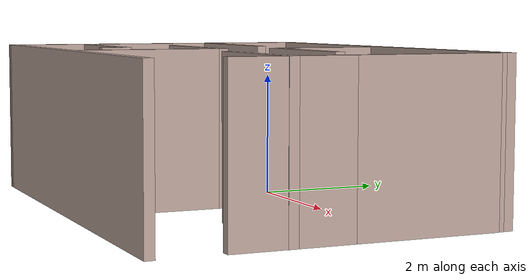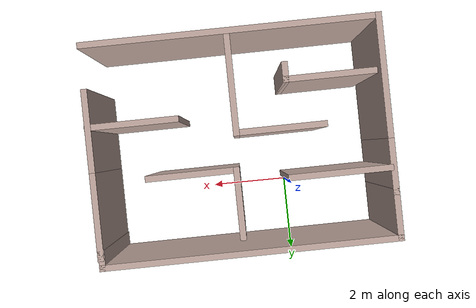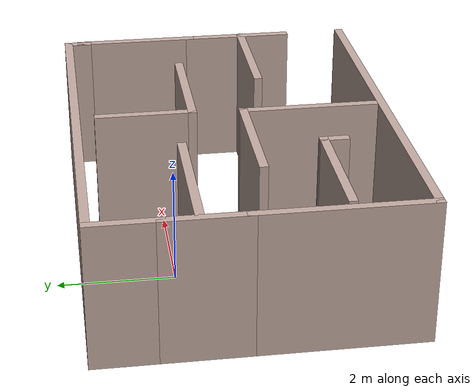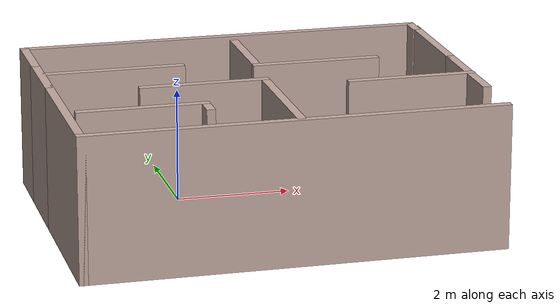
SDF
<?xml version='1.0'?>
<sdf version='1.6'>
  <model name='enveronment'>
    <pose frame=''>1.16374 -1.13 0 0 -0 0</pose>
    <link name='Wall_0'>
      <collision name='Wall_0_Collision'>
        <geometry>
          <box>
            <size>3 0.15 2.5</size>
          </box>
        </geometry>
        <pose frame=''>0 0 1.25 0 -0 0</pose>
      </collision>
      <visual name='Wall_0_Visual'>
        <pose frame=''>0 0 1.25 0 -0 0</pose>
        <geometry>
          <box>
            <size>3 0.15 2.5</size>
          </box>
        </geometry>
        <material>
          <script>
            <uri>file://media/materials/scripts/gazebo.material</uri>
            <name>Gazebo/Grey</name>
          </script>
          <ambient>0.760784 0.662745 0.627451 1</ambient>
        </material>
        <meta>
          <layer>0</layer>
        </meta>
      </visual>
      <pose frame=''>-3.56374 -1.225 0 0 -0 -1.5708</pose>
    </link>
    <link name='Wall_1'>
      <collision name='Wall_1_Collision'>
        <geometry>
          <box>
            <size>7.25 0.15 2.5</size>
          </box>
        </geometry>
        <pose frame=''>0 0 1.25 0 -0 0</pose>
      </collision>
      <visual name='Wall_1_Visual'>
        <pose frame=''>0 0 1.25 0 -0 0</pose>
        <geometry>
          <box>
            <size>7.25 0.15 2.5</size>
          </box>
        </geometry>
        <material>
          <script>
            <uri>file://media/materials/scripts/gazebo.material</uri>
            <name>Gazebo/Grey</name>
          </script>
          <ambient>0.760784 0.662745 0.627451 1</ambient>
        </material>
        <meta>
          <layer>0</layer>
        </meta>
      </visual>
      <pose frame=''>-0.013737 -2.65 0 0 -0 0</pose>
    </link>
    <link name='Wall_11'>
      <collision name='Wall_11_Collision'>
        <geometry>
          <box>
            <size>2.5 0.15 2.5</size>
          </box>
        </geometry>
        <pose frame=''>0 0 1.25 0 -0 0</pose>
      </collision>
      <visual name='Wall_11_Visual'>
        <pose frame=''>0 0 1.25 0 -0 0</pose>
        <geometry>
          <box>
            <size>2.5 0.15 2.5</size>
          </box>
        </geometry>
        <material>
          <script>
            <uri>file://media/materials/scripts/gazebo.material</uri>
            <name>Gazebo/Grey</name>
          </script>
          <ambient>0.760784 0.662745 0.627451 1</ambient>
        </material>
        <meta>
          <layer>0</layer>
        </meta>
      </visual>
      <pose frame=''>-2.30874 0.97 0 0 -0 0</pose>
    </link>
    <link name='Wall_13'>
      <collision name='Wall_13_Collision'>
        <geometry>
          <box>
            <size>2 0.15 2.5</size>
          </box>
        </geometry>
        <pose frame=''>0 0 1.25 0 -0 0</pose>
      </collision>
      <visual name='Wall_13_Visual'>
        <pose frame=''>0 0 1.25 0 -0 0</pose>
        <geometry>
          <box>
            <size>2 0.15 2.5</size>
          </box>
        </geometry>
        <material>
          <script>
            <uri>file://media/materials/scripts/gazebo.material</uri>
            <name>Gazebo/Grey</name>
          </script>
          <ambient>0.760784 0.662745 0.627451 1</ambient>
        </material>
        <meta>
          <layer>0</layer>
        </meta>
      </visual>
      <pose frame=''>3.55626 -0.615 0 0 -0 1.5708</pose>
    </link>
    <link name='Wall_15'>
      <collision name='Wall_15_Collision'>
        <geometry>
          <box>
            <size>2.25 0.15 2.5</size>
          </box>
        </geometry>
        <pose frame=''>0 0 1.25 0 -0 0</pose>
      </collision>
      <visual name='Wall_15_Visual'>
        <pose frame=''>0 0 1.25 0 -0 0</pose>
        <geometry>
          <box>
            <size>2.25 0.15 2.5</size>
          </box>
        </geometry>
        <material>
          <script>
            <uri>file://media/materials/scripts/gazebo.material</uri>
            <name>Gazebo/Grey</name>
          </script>
          <ambient>0.760784 0.662745 0.627451 1</ambient>
        </material>
        <meta>
          <layer>0</layer>
        </meta>
      </visual>
      <pose frame=''>3.55626 1.36 0 0 -0 1.5708</pose>
    </link>
    <link name='Wall_20'>
      <collision name='Wall_20_Collision'>
        <geometry>
          <box>
            <size>1.25 0.15 2.5</size>
          </box>
        </geometry>
        <pose frame=''>0 0 1.25 0 -0 0</pose>
      </collision>
      <visual name='Wall_20_Visual'>
        <pose frame=''>0 0 1.25 0 -0 0</pose>
        <geometry>
          <box>
            <size>1.25 0.15 2.5</size>
          </box>
        </geometry>
        <material>
          <script>
            <uri>file://media/materials/scripts/gazebo.material</uri>
            <name>Gazebo/Grey</name>
          </script>
          <ambient>0.760784 0.662745 0.627451 1</ambient>
        </material>
        <meta>
          <layer>0</layer>
        </meta>
      </visual>
      <pose frame=''>-3.56374 2.1 0 0 -0 1.5708</pose>
    </link>
    <link name='Wall_22'>
      <collision name='Wall_22_Collision'>
        <geometry>
          <box>
            <size>1.75 0.15 2.5</size>
          </box>
        </geometry>
        <pose frame=''>0 0 1.25 0 -0 0</pose>
      </collision>
      <visual name='Wall_22_Visual'>
        <pose frame=''>0 0 1.25 0 -0 0</pose>
        <geometry>
          <box>
            <size>1.75 0.15 2.5</size>
          </box>
        </geometry>
        <material>
          <script>
            <uri>file://media/materials/scripts/gazebo.material</uri>
            <name>Gazebo/Grey</name>
          </script>
          <ambient>0.760784 0.662745 0.627451 1</ambient>
        </material>
        <meta>
          <layer>0</layer>
        </meta>
      </visual>
      <pose frame=''>0.151688 1.45728 0 0 -0 1.5708</pose>
    </link>
    <link name='Wall_26'>
      <collision name='Wall_26_Collision'>
        <geometry>
          <box>
            <size>2.25 0.15 2.5</size>
          </box>
        </geometry>
        <pose frame=''>0 0 1.25 0 -0 0</pose>
      </collision>
      <visual name='Wall_26_Visual'>
        <pose frame=''>0 0 1.25 0 -0 0</pose>
        <geometry>
          <box>
            <size>2.25 0.15 2.5</size>
          </box>
        </geometry>
        <material>
          <script>
            <uri>file://media/materials/scripts/gazebo.material</uri>
            <name>Gazebo/Grey</name>
          </script>
          <ambient>0.760784 0.662745 0.627451 1</ambient>
        </material>
        <meta>
          <layer>0</layer>
        </meta>
      </visual>
      <pose frame=''>2.51374 -0.691675 0 0 -0 3.14159</pose>
    </link>
    <link name='Wall_28'>
      <collision name='Wall_28_Collision'>
        <geometry>
          <box>
            <size>2.25 0.15 2.5</size>
          </box>
        </geometry>
        <pose frame=''>0 0 1.25 0 -0 0</pose>
      </collision>
      <visual name='Wall_28_Visual'>
        <pose frame=''>0 0 1.25 0 -0 0</pose>
        <geometry>
          <box>
            <size>2.25 0.15 2.5</size>
          </box>
        </geometry>
        <material>
          <script>
            <uri>file://media/materials/scripts/gazebo.material</uri>
            <name>Gazebo/Grey</name>
          </script>
          <ambient>0.760784 0.662745 0.627451 1</ambient>
        </material>
        <meta>
          <layer>0</layer>
        </meta>
      </visual>
      <pose frame=''>1.20169 0.657275 0 0 -0 0</pose>
    </link>
    <link name='Wall_3'>
      <collision name='Wall_3_Collision'>
        <geometry>
          <box>
            <size>2.25 0.15 2.5</size>
          </box>
        </geometry>
        <pose frame=''>0 0 1.25 0 -0 0</pose>
      </collision>
      <visual name='Wall_3_Visual'>
        <pose frame=''>0 0 1.25 0 -0 0</pose>
        <geometry>
          <box>
            <size>2.25 0.15 2.5</size>
          </box>
        </geometry>
        <material>
          <script>
            <uri>file://media/materials/scripts/gazebo.material</uri>
            <name>Gazebo/Grey</name>
          </script>
          <ambient>0.760784 0.662745 0.627451 1</ambient>
        </material>
        <meta>
          <layer>0</layer>
        </meta>
      </visual>
      <pose frame=''>-2.28374 -1.36 0 0 -0 0</pose>
    </link>
    <link name='Wall_30'>
      <collision name='Wall_30_Collision'>
        <geometry>
          <box>
            <size>7.25 0.15 2.5</size>
          </box>
        </geometry>
        <pose frame=''>0 0 1.25 0 -0 0</pose>
      </collision>
      <visual name='Wall_30_Visual'>
        <pose frame=''>0 0 1.25 0 -0 0</pose>
        <geometry>
          <box>
            <size>7.25 0.15 2.5</size>
          </box>
        </geometry>
        <material>
          <script>
            <uri>file://media/materials/scripts/gazebo.material</uri>
            <name>Gazebo/Grey</name>
          </script>
          <ambient>0.760784 0.662745 0.627451 1</ambient>
        </material>
        <meta>
          <layer>0</layer>
        </meta>
      </visual>
      <pose frame=''>-0.013737 2.65 0 0 -0 0</pose>
    </link>
    <link name='Wall_32'>
      <collision name='Wall_32_Collision'>
        <geometry>
          <box>
            <size>0.5 0.15 2.5</size>
          </box>
        </geometry>
        <pose frame=''>0 0 1.25 0 -0 0</pose>
      </collision>
      <visual name='Wall_32_Visual'>
        <pose frame=''>0 0 1.25 0 -0 0</pose>
        <geometry>
          <box>
            <size>0.5 0.15 2.5</size>
          </box>
        </geometry>
        <material>
          <script>
            <uri>file://media/materials/scripts/gazebo.material</uri>
            <name>Gazebo/Grey</name>
          </script>
          <ambient>0.760784 0.662745 0.627451 1</ambient>
        </material>
        <meta>
          <layer>0</layer>
        </meta>
      </visual>
      <pose frame=''>3.53626 2.475 0 0 -0 -1.5708</pose>
    </link>
    <link name='Wall_4'>
      <collision name='Wall_4_Collision'>
        <geometry>
          <box>
            <size>0.5 0.15 2.5</size>
          </box>
        </geometry>
        <pose frame=''>0 0 1.25 0 -0 0</pose>
      </collision>
      <visual name='Wall_4_Visual'>
        <pose frame=''>0 0 1.25 0 -0 0</pose>
        <geometry>
          <box>
            <size>0.5 0.15 2.5</size>
          </box>
        </geometry>
        <material>
          <script>
            <uri>file://media/materials/scripts/gazebo.material</uri>
            <name>Gazebo/Grey</name>
          </script>
          <ambient>0.760784 0.662745 0.627451 1</ambient>
        </material>
        <meta>
          <layer>0</layer>
        </meta>
      </visual>
      <pose frame=''>-1.23374 -1.535 0 0 -0 -1.5708</pose>
    </link>
    <link name='Wall_6'>
      <collision name='Wall_6_Collision'>
        <geometry>
          <box>
            <size>2.5 0.15 2.5</size>
          </box>
        </geometry>
        <pose frame=''>0 0 1.25 0 -0 0</pose>
      </collision>
      <visual name='Wall_6_Visual'>
        <pose frame=''>0 0 1.25 0 -0 0</pose>
        <geometry>
          <box>
            <size>2.5 0.15 2.5</size>
          </box>
        </geometry>
        <material>
          <script>
            <uri>file://media/materials/scripts/gazebo.material</uri>
            <name>Gazebo/Grey</name>
          </script>
          <ambient>0.760784 0.662745 0.627451 1</ambient>
        </material>
        <meta>
          <layer>0</layer>
        </meta>
      </visual>
      <pose frame=''>0.066263 -1.395 0 0 -0 1.5708</pose>
    </link>
    <link name='Wall_7'>
      <collision name='Wall_7_Collision'>
        <geometry>
          <box>
            <size>2.25 0.15 2.5</size>
          </box>
        </geometry>
        <pose frame=''>0 0 1.25 0 -0 0</pose>
      </collision>
      <visual name='Wall_7_Visual'>
        <pose frame=''>0 0 1.25 0 -0 0</pose>
        <geometry>
          <box>
            <size>2.25 0.15 2.5</size>
          </box>
        </geometry>
        <material>
          <script>
            <uri>file://media/materials/scripts/gazebo.material</uri>
            <name>Gazebo/Grey</name>
          </script>
          <ambient>0.760784 0.662745 0.627451 1</ambient>
        </material>
        <meta>
          <layer>0</layer>
        </meta>
      </visual>
      <pose frame=''>-0.983737 -0.22 0 0 -0 3.14159</pose>
    </link>
    <link name='Wall_9'>
      <collision name='Wall_9_Collision'>
        <geometry>
          <box>
            <size>1.5 0.15 2.5</size>
          </box>
        </geometry>
        <pose frame=''>0 0 1.25 0 -0 0</pose>
      </collision>
      <visual name='Wall_9_Visual'>
        <pose frame=''>0 0 1.25 0 -0 0</pose>
        <geometry>
          <box>
            <size>1.5 0.15 2.5</size>
          </box>
        </geometry>
        <material>
          <script>
            <uri>file://media/materials/scripts/gazebo.material</uri>
            <name>Gazebo/Grey</name>
          </script>
          <ambient>0.760784 0.662745 0.627451 1</ambient>
        </material>
        <meta>
          <layer>0</layer>
        </meta>
      </visual>
      <pose frame=''>-3.56374 0.875 0 0 -0 1.5708</pose>
    </link>
    <static>1</static>
  </model>
</sdf>
